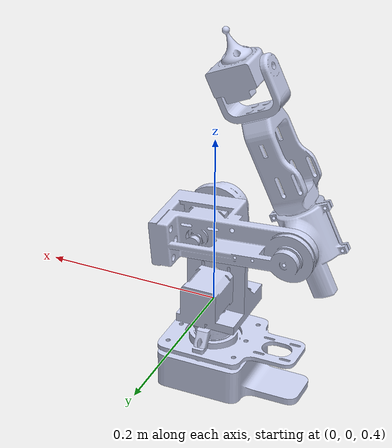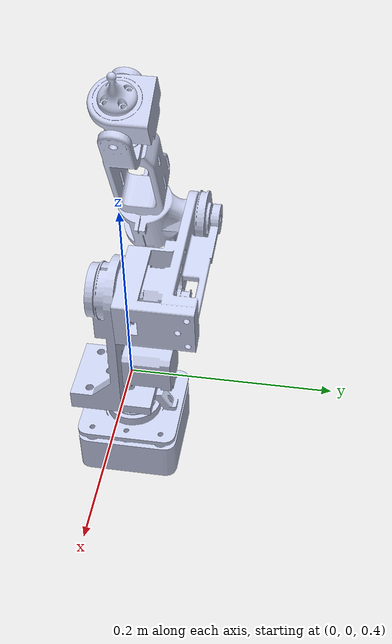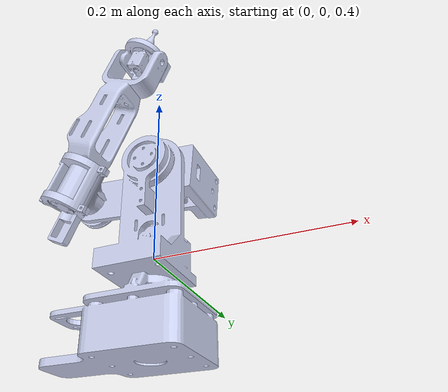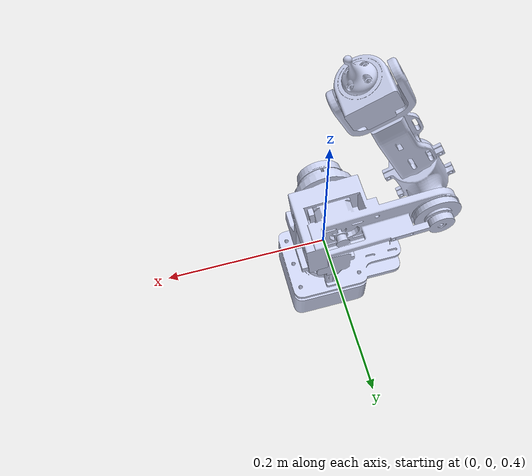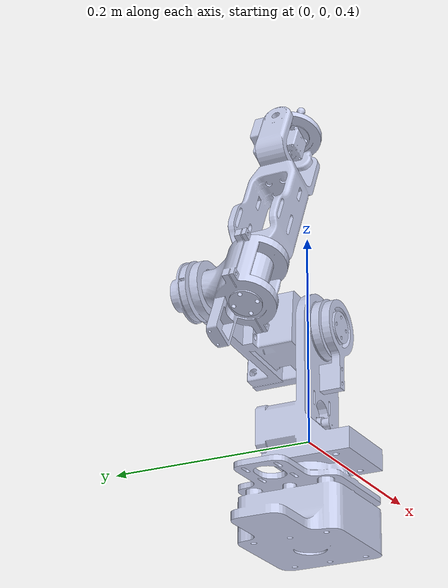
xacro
<?xml version="1.0"?>
<robot xmlns:xacro="http://www.ros.org/wiki/xacro">
  <xacro:property name="joint_damping" value="1.0"/>

  <link name="world"/>

  <joint name="base_joint" type="fixed">
    <parent link="world"/>
    <child link="base_link"/>
    <origin rpy="0 0 0" xyz="0.0 0.0 0.3"/>
  </joint>

  <link
    name="base_link">
    <inertial>
      <origin
        xyz="-0.00522413960660934 1.01612793732535E-06 0.0266388152879452"
        rpy="0 0 0" />
      <mass
        value="0.05" />
      <inertia ixx="0.0001" ixy="0.000"  ixz="0.000"
         iyy="0.0001" iyz="0.000"
         izz="0.0001"/>
    </inertial>
    <visual>
      <origin
        xyz="0 0 0"
        rpy="0 0 0" />
      <geometry>
        <mesh
          filename="package://nick_bot/meshes/base_link.STL" />
      </geometry>
      <material
        name="">
        <color
          rgba="0.792156862745098 0.819607843137255 0.933333333333333 1" />
      </material>
    </visual>
    <collision>
      <origin
        xyz="0 0 0"
        rpy="0 0 0" />
      <geometry>
        <mesh
          filename="package://nick_bot/meshes/base_link.STL" />
      </geometry>
    </collision>
  </link>
  <link
    name="link_1">
    <inertial>
      <origin
        xyz="0.00616337962890819 0.00100379018116143 0.0605890124959618"
        rpy="0 0 0" />
      <mass
        value="0.05" />
      <inertia ixx="0.0001" ixy="0.000"  ixz="0.000"
         iyy="0.0001" iyz="0.000"
         izz="0.0001"/>
    </inertial>
    <visual>
      <origin
        xyz="0 0 0"
        rpy="0 0 0" />
      <geometry>
        <mesh
          filename="package://nick_bot/meshes/link_1.STL" />
      </geometry>
      <material
        name="">
        <color
          rgba="0.792156862745098 0.819607843137255 0.933333333333333 1" />
      </material>
    </visual>
    <collision>
      <origin
        xyz="0 0 0"
        rpy="0 0 0" />
      <geometry>
        <mesh
          filename="package://nick_bot/meshes/link_1.STL" />
      </geometry>
    </collision>
  </link>
  <joint
    name="joint_1"
    type="revolute">
    <origin
      xyz="0 0 0.064087"
      rpy="0.017453 0 -1.5621" />
    <parent
      link="base_link" />
    <child
      link="link_1" />
    <axis
      xyz="0 -0.017452 -0.99985" />
    <limit
      lower="-1.75"
      upper="1.75"
      effort="0"
      velocity="0" />
  </joint>
  <link
    name="link_2">
    <inertial>
      <origin
        xyz="-0.0320499775068787 0.000595202453078758 0.018073123575994"
        rpy="0 0 0" />
      <mass
        value="0.05" />
      <inertia ixx="0.0001" ixy="0.000"  ixz="0.000"
         iyy="0.0001" iyz="0.000"
         izz="0.0001"/>
    </inertial>
    <visual>
      <origin
        xyz="0 0 0"
        rpy="0 0 0" />
      <geometry>
        <mesh
          filename="package://nick_bot/meshes/link_2.STL" />
      </geometry>
      <material
        name="">
        <color
          rgba="0.792156862745098 0.819607843137255 0.933333333333333 1" />
      </material>
    </visual>
    <collision>
      <origin
        xyz="0 0 0"
        rpy="0 0 0" />
      <geometry>
        <mesh
          filename="package://nick_bot/meshes/link_2.STL" />
      </geometry>
    </collision>
  </link>
  <joint
    name="joint_2"
    type="revolute">
    <origin
      xyz="0 0.0024593 0.14089"
      rpy="1.4835 -0.0088311 -0.0078131" />
    <parent
      link="link_1" />
    <child
      link="link_2" />
    <axis
      xyz="-0.99996 0.0087252 -0.0001523" />
    <limit
      lower="-0.6"
      upper="3.6"
      effort="0"
      velocity="0" />
  </joint>
  <link
    name="link_3">
    <inertial>
      <origin
        xyz="-0.0147738927835156 0.000115773286870235 -0.00365845437443535"
        rpy="0 0 0" />
      <mass
        value="0.05" />
      <inertia ixx="0.0001" ixy="0.000"  ixz="0.000"
         iyy="0.0001" iyz="0.000"
         izz="0.0001"/>
    </inertial>
    <visual>
      <origin
        xyz="0 0 0"
        rpy="0 0 0" />
      <geometry>
        <mesh
          filename="package://nick_bot/meshes/link_3.STL" />
      </geometry>
      <material
        name="">
        <color
          rgba="0.792156862745098 0.819607843137255 0.933333333333333 1" />
      </material>
    </visual>
    <collision>
      <origin
        xyz="0 0 0"
        rpy="0 0 0" />
      <geometry>
        <mesh
          filename="package://nick_bot/meshes/link_3.STL" />
      </geometry>
    </collision>
  </link>
  <joint
    name="joint_3"
    type="revolute">
    <origin
      xyz="0 0.0019372 0.11098"
      rpy="-1.9199 0.0079947 -0.011853" />
    <parent
      link="link_2" />
    <child
      link="link_3" />
    <axis
      xyz="-0.99996 0.0087252 -0.0001523" />
    <limit
      lower="-4.2"
      upper="0"
      effort="0"
      velocity="0" />
  </joint>
  <link
    name="link_4">
    <inertial>
      <origin
        xyz="0.000446439621704181 0.00137190367562623 0.0788129649196884"
        rpy="0 0 0" />
      <mass
        value="0.05" />
      <inertia ixx="0.0001" ixy="0.000"  ixz="0.000"
         iyy="0.0001" iyz="0.000"
         izz="0.0001"/>
    </inertial>
    <visual>
      <origin
        xyz="0 0 0"
        rpy="0 0 0" />
      <geometry>
        <mesh
          filename="package://nick_bot/meshes/link_4.STL" />
      </geometry>
      <material
        name="">
        <color
          rgba="0.792156862745098 0.819607843137255 0.933333333333333 1" />
      </material>
    </visual>
    <collision>
      <origin
        xyz="0 0 0"
        rpy="0 0 0" />
      <geometry>
        <mesh
          filename="package://nick_bot/meshes/link_4.STL" />
      </geometry>
    </collision>
  </link>
  <joint
    name="joint_4"
    type="revolute">
    <origin
      xyz="0 0 0"
      rpy="0.017453 -0.017453 -1.5708" />
    <parent
      link="link_3" />
    <child
      link="link_4" />
    <axis
      xyz="0 -0.017452 -0.99985" />
    <limit
      lower="-4.7"
      upper="4.7"
      effort="0"
      velocity="0" />
  </joint>
  <link
    name="link_5">
    <inertial>
      <origin
        xyz="1.37814036968442E-06 -0.0112175744982041 0.00258648216033591"
        rpy="0 0 0" />
      <mass
        value="0.05" />
      <inertia ixx="0.0001" ixy="0.000"  ixz="0.000"
         iyy="0.0001" iyz="0.000"
         izz="0.0001"/>
    </inertial>
    <visual>
      <origin
        xyz="0 0 0"
        rpy="0 0 0" />
      <geometry>
        <mesh
          filename="package://nick_bot/meshes/link_5.STL" />
      </geometry>
      <material
        name="">
        <color
          rgba="0.792156862745098 0.819607843137255 0.933333333333333 1" />
      </material>
    </visual>
    <collision>
      <origin
        xyz="0 0 0"
        rpy="0 0 0" />
      <geometry>
        <mesh
          filename="package://nick_bot/meshes/link_5.STL" />
      </geometry>
    </collision>
  </link>
  <joint
    name="joint_5"
    type="revolute">
    <origin
      xyz="0 0.0032854 0.18822"
      rpy="-0.017453 -0.0001523 -0.0087253" />
    <parent
      link="link_4" />
    <child
      link="link_5" />
    <axis
      xyz="-1 0 0" />
    <limit
      lower="-2.35"
      upper="2.35"
      effort="0"
      velocity="0" />
  </joint>
  <link
    name="end_effector">
    <inertial>
      <origin
        xyz="-1.66377830262965E-08 0.0204269190545232 3.44363878523879E-08"
        rpy="0 0 0" />
      <mass
        value="0.05" />
      <inertia ixx="0.0001" ixy="0.000"  ixz="0.000"
         iyy="0.0001" iyz="0.000"
         izz="0.0001"/>
    </inertial>
    <visual>
      <origin
        xyz="0 0 0"
        rpy="0 0 0" />
      <geometry>
        <mesh
          filename="package://nick_bot/meshes/end_effector.STL" />
      </geometry>
      <material
        name="">
        <color
          rgba="0.792156862745098 0.819607843137255 0.933333333333333 1" />
      </material>
    </visual>
    <collision>
      <origin
        xyz="0 0 0"
        rpy="0 0 0" />
      <geometry>
        <mesh
          filename="package://nick_bot/meshes/end_effector.STL" />
      </geometry>
    </collision>
  </link>
  <joint
    name="joint_6"
    type="continuous">
    <origin
      xyz="0 0 0"
      rpy="1.5708 0 2.2137" />
    <parent
      link="link_5" />
    <child
      link="end_effector" />
    <axis
      xyz="0 -1 0" />
  </joint>

  <gazebo reference="link_1">
    <implicitSpringDamper>True</implicitSpringDamper>
   	<selfCollide>false</selfCollide>
    <turnGravityOff>true</turnGravityOff>
	</gazebo>
	<gazebo reference="link_2">
    <implicitSpringDamper>True</implicitSpringDamper>
   	<selfCollide>false</selfCollide>
    <turnGravityOff>true</turnGravityOff>
	</gazebo>

	<gazebo reference="link_3">
    <implicitSpringDamper>True</implicitSpringDamper>
   	<selfCollide>false</selfCollide>
    <turnGravityOff>true</turnGravityOff>
	</gazebo>

	<gazebo reference="link_4">
    <implicitSpringDamper>True</implicitSpringDamper>
   	<selfCollide>false</selfCollide>
    <turnGravityOff>true</turnGravityOff>
	</gazebo>

	<gazebo reference="link_5">
    <implicitSpringDamper>True</implicitSpringDamper>
   	<selfCollide>false</selfCollide>
    <turnGravityOff>true</turnGravityOff>
	</gazebo>

	<gazebo reference="end_effector">
    <implicitSpringDamper>True</implicitSpringDamper>
   	<selfCollide>false</selfCollide>
    <turnGravityOff>true</turnGravityOff>
	</gazebo>

</robot>
